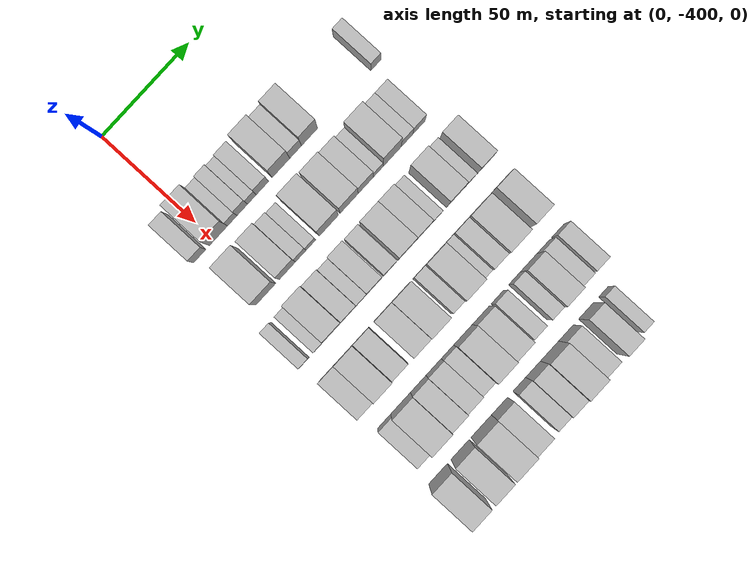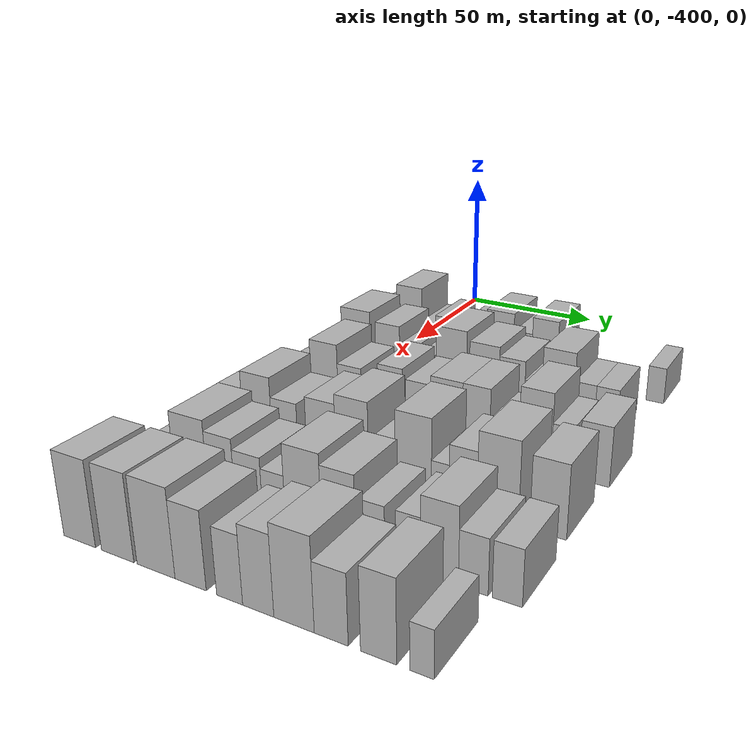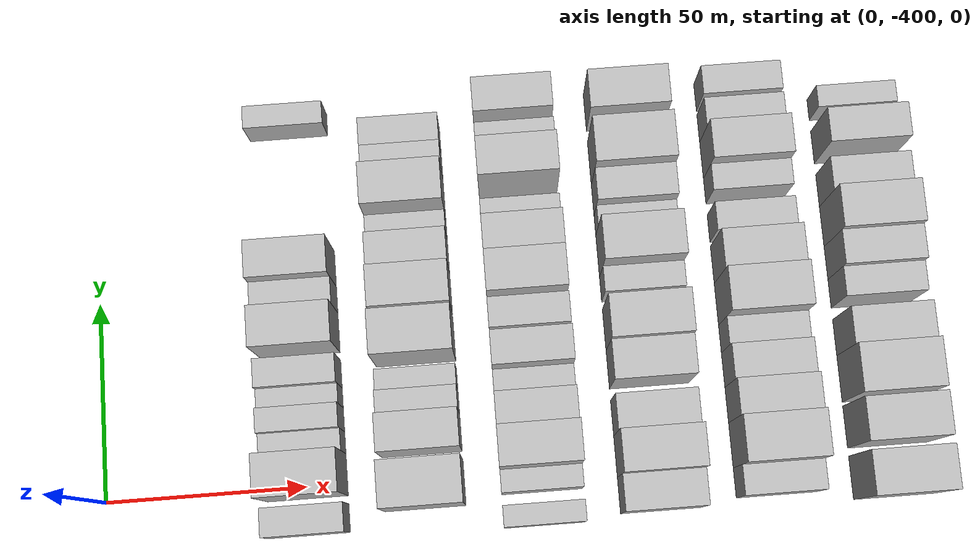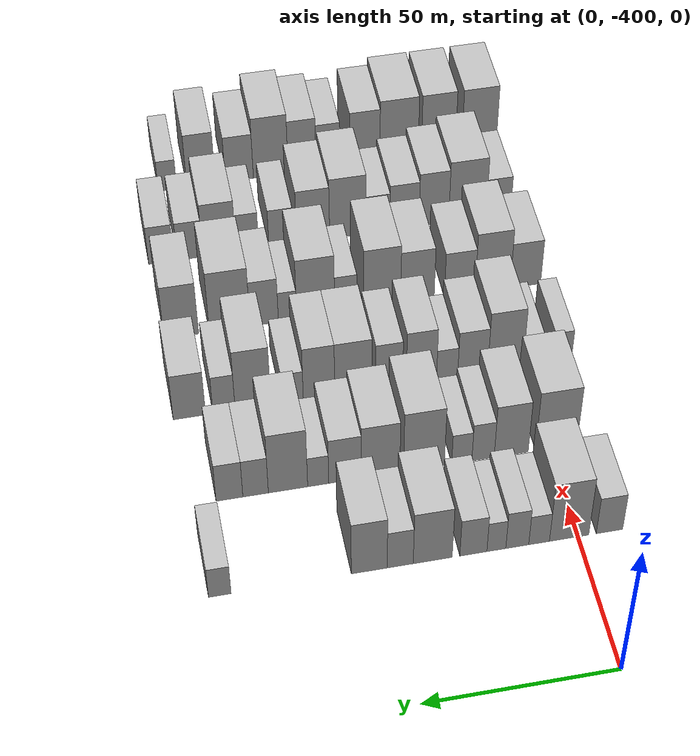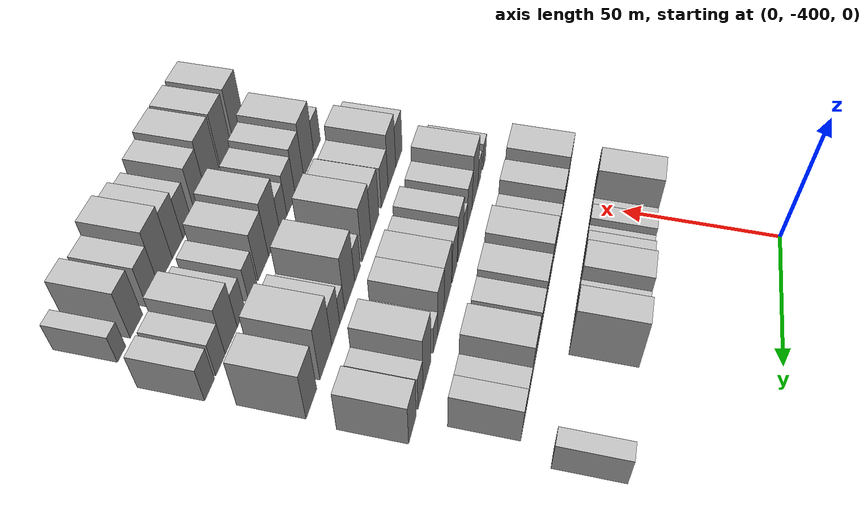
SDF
<sdf version="1.6">
 <world name="default">
  <model name="building_13">
   <static>1</static>
   <pose>50.0000 -408.3630 0 0.000000 0.000000 0.000000</pose>
   <link name="link">
    <pose>0 0 7.50 0 0 0</pose>
    <collision name="collision"><geometry><box><size>20.0000 7.0390 15.0000</size></box></geometry></collision>
    <visual name="visual">
     <cast_shadows>0</cast_shadows>
     <geometry><box><size>20.0000 7.0390 15.0000</size></box></geometry>
     <material>
      <script>
       <uri>model://HANNAS_wall/materials/scripts</uri>
       <uri>model://HANNAS_wall/materials/textures</uri>
       <name>vrc/HANNAS_wall</name>
      </script>
     </material>
    </visual>
   </link>
  </model>
  <model name="building_14">
   <static>1</static>
   <pose>50.0000 -397.6285 0 0.000000 0.000000 0.000000</pose>
   <link name="link">
    <pose>0 0 12.00 0 0 0</pose>
    <collision name="collision"><geometry><box><size>20.0000 10.4300 24.0000</size></box></geometry></collision>
    <visual name="visual">
     <cast_shadows>0</cast_shadows>
     <geometry><box><size>20.0000 10.4300 24.0000</size></box></geometry>
     <material>
      <script>
       <uri>model://HANNAS_wall/materials/scripts</uri>
       <uri>model://HANNAS_wall/materials/textures</uri>
       <name>vrc/HANNAS_wall</name>
      </script>
     </material>
    </visual>
   </link>
  </model>
  <model name="building_15">
   <static>1</static>
   <pose>50.0000 -389.6784 0 0.000000 0.000000 0.000000</pose>
   <link name="link">
    <pose>0 0 6.00 0 0 0</pose>
    <collision name="collision"><geometry><box><size>20.0000 5.4701 12.0000</size></box></geometry></collision>
    <visual name="visual">
     <cast_shadows>0</cast_shadows>
     <geometry><box><size>20.0000 5.4701 12.0000</size></box></geometry>
     <material>
      <script>
       <uri>model://HANNAS_wall/materials/scripts</uri>
       <uri>model://HANNAS_wall/materials/textures</uri>
       <name>vrc/HANNAS_wall</name>
      </script>
     </material>
    </visual>
   </link>
  </model>
  <model name="building_16">
   <static>1</static>
   <pose>50.0000 -383.9326 0 0.000000 0.000000 0.000000</pose>
   <link name="link">
    <pose>0 0 7.50 0 0 0</pose>
    <collision name="collision"><geometry><box><size>20.0000 6.0216 15.0000</size></box></geometry></collision>
    <visual name="visual">
     <cast_shadows>0</cast_shadows>
     <geometry><box><size>20.0000 6.0216 15.0000</size></box></geometry>
     <material>
      <script>
       <uri>model://HANNAS_wall/materials/scripts</uri>
       <uri>model://HANNAS_wall/materials/textures</uri>
       <name>vrc/HANNAS_wall</name>
      </script>
     </material>
    </visual>
   </link>
  </model>
  <model name="building_17">
   <static>1</static>
   <pose>50.0000 -378.4423 0 0.000000 0.000000 0.000000</pose>
   <link name="link">
    <pose>0 0 6.00 0 0 0</pose>
    <collision name="collision"><geometry><box><size>20.0000 4.9590 12.0000</size></box></geometry></collision>
    <visual name="visual">
     <cast_shadows>0</cast_shadows>
     <geometry><box><size>20.0000 4.9590 12.0000</size></box></geometry>
     <material>
      <script>
       <uri>model://HANNAS_wall/materials/scripts</uri>
       <uri>model://HANNAS_wall/materials/textures</uri>
       <name>vrc/HANNAS_wall</name>
      </script>
     </material>
    </visual>
   </link>
  </model>
  <model name="building_18">
   <static>1</static>
   <pose>50.0000 -372.4186 0 0.000000 0.000000 0.000000</pose>
   <link name="link">
    <pose>0 0 7.50 0 0 0</pose>
    <collision name="collision"><geometry><box><size>20.0000 7.0884 15.0000</size></box></geometry></collision>
    <visual name="visual">
     <cast_shadows>0</cast_shadows>
     <geometry><box><size>20.0000 7.0884 15.0000</size></box></geometry>
     <material>
      <script>
       <uri>model://HANNAS_wall/materials/scripts</uri>
       <uri>model://HANNAS_wall/materials/textures</uri>
       <name>vrc/HANNAS_wall</name>
      </script>
     </material>
    </visual>
   </link>
  </model>
  <model name="building_19">
   <static>1</static>
   <pose>50.0000 -361.8042 0 0.000000 0.000000 0.000000</pose>
   <link name="link">
    <pose>0 0 10.50 0 0 0</pose>
    <collision name="collision"><geometry><box><size>20.0000 10.1404 21.0000</size></box></geometry></collision>
    <visual name="visual">
     <cast_shadows>0</cast_shadows>
     <geometry><box><size>20.0000 10.1404 21.0000</size></box></geometry>
     <material>
      <script>
       <uri>model://HANNAS_wall/materials/scripts</uri>
       <uri>model://HANNAS_wall/materials/textures</uri>
       <name>vrc/HANNAS_wall</name>
      </script>
     </material>
    </visual>
   </link>
  </model>
  <model name="building_20">
   <static>1</static>
   <pose>50.0000 -353.3539 0 0.000000 0.000000 0.000000</pose>
   <link name="link">
    <pose>0 0 7.50 0 0 0</pose>
    <collision name="collision"><geometry><box><size>20.0000 6.7602 15.0000</size></box></geometry></collision>
    <visual name="visual">
     <cast_shadows>0</cast_shadows>
     <geometry><box><size>20.0000 6.7602 15.0000</size></box></geometry>
     <material>
      <script>
       <uri>model://HANNAS_wall/materials/scripts</uri>
       <uri>model://HANNAS_wall/materials/textures</uri>
       <name>vrc/HANNAS_wall</name>
      </script>
     </material>
    </visual>
   </link>
  </model>
  <model name="building_21">
   <static>1</static>
   <pose>50.0000 -345.3491 0 0.000000 0.000000 0.000000</pose>
   <link name="link">
    <pose>0 0 10.50 0 0 0</pose>
    <collision name="collision"><geometry><box><size>20.0000 9.2494 21.0000</size></box></geometry></collision>
    <visual name="visual">
     <cast_shadows>0</cast_shadows>
     <geometry><box><size>20.0000 9.2494 21.0000</size></box></geometry>
     <material>
      <script>
       <uri>model://HANNAS_wall/materials/scripts</uri>
       <uri>model://HANNAS_wall/materials/textures</uri>
       <name>vrc/HANNAS_wall</name>
      </script>
     </material>
    </visual>
   </link>
  </model>
  <model name="building_22">
   <static>1</static>
   <pose>50.0000 -307.1220 0 0.000000 0.000000 0.000000</pose>
   <link name="link">
    <pose>0 0 6.00 0 0 0</pose>
    <collision name="collision"><geometry><box><size>20.0000 5.7349 12.0000</size></box></geometry></collision>
    <visual name="visual">
     <cast_shadows>0</cast_shadows>
     <geometry><box><size>20.0000 5.7349 12.0000</size></box></geometry>
     <material>
      <script>
       <uri>model://HANNAS_wall/materials/scripts</uri>
       <uri>model://HANNAS_wall/materials/textures</uri>
       <name>vrc/HANNAS_wall</name>
      </script>
     </material>
    </visual>
   </link>
  </model>
  <model name="building_126">
   <static>1</static>
   <pose>79.0000 -401.8279 0 0.000000 0.000000 0.000000</pose>
   <link name="link">
    <pose>0 0 12.00 0 0 0</pose>
    <collision name="collision"><geometry><box><size>20.0000 11.3581 24.0000</size></box></geometry></collision>
    <visual name="visual">
     <cast_shadows>0</cast_shadows>
     <geometry><box><size>20.0000 11.3581 24.0000</size></box></geometry>
     <material>
      <script>
       <uri>model://HANNAS_wall/materials/scripts</uri>
       <uri>model://HANNAS_wall/materials/textures</uri>
       <name>vrc/HANNAS_wall</name>
      </script>
     </material>
    </visual>
   </link>
  </model>
  <model name="building_127">
   <static>1</static>
   <pose>79.0000 -389.4986 0 0.000000 0.000000 0.000000</pose>
   <link name="link">
    <pose>0 0 10.50 0 0 0</pose>
    <collision name="collision"><geometry><box><size>20.0000 9.3005 21.0000</size></box></geometry></collision>
    <visual name="visual">
     <cast_shadows>0</cast_shadows>
     <geometry><box><size>20.0000 9.3005 21.0000</size></box></geometry>
     <material>
      <script>
       <uri>model://HANNAS_wall/materials/scripts</uri>
       <uri>model://HANNAS_wall/materials/textures</uri>
       <name>vrc/HANNAS_wall</name>
      </script>
     </material>
    </visual>
   </link>
  </model>
  <model name="building_128">
   <static>1</static>
   <pose>79.0000 -381.8173 0 0.000000 0.000000 0.000000</pose>
   <link name="link">
    <pose>0 0 7.50 0 0 0</pose>
    <collision name="collision"><geometry><box><size>20.0000 6.0622 15.0000</size></box></geometry></collision>
    <visual name="visual">
     <cast_shadows>0</cast_shadows>
     <geometry><box><size>20.0000 6.0622 15.0000</size></box></geometry>
     <material>
      <script>
       <uri>model://HANNAS_wall/materials/scripts</uri>
       <uri>model://HANNAS_wall/materials/textures</uri>
       <name>vrc/HANNAS_wall</name>
      </script>
     </material>
    </visual>
   </link>
  </model>
  <model name="building_129">
   <static>1</static>
   <pose>79.0000 -376.0489 0 0.000000 0.000000 0.000000</pose>
   <link name="link">
    <pose>0 0 6.00 0 0 0</pose>
    <collision name="collision"><geometry><box><size>20.0000 5.4746 12.0000</size></box></geometry></collision>
    <visual name="visual">
     <cast_shadows>0</cast_shadows>
     <geometry><box><size>20.0000 5.4746 12.0000</size></box></geometry>
     <material>
      <script>
       <uri>model://HANNAS_wall/materials/scripts</uri>
       <uri>model://HANNAS_wall/materials/textures</uri>
       <name>vrc/HANNAS_wall</name>
      </script>
     </material>
    </visual>
   </link>
  </model>
  <model name="building_130">
   <static>1</static>
   <pose>79.0000 -365.7955 0 0.000000 0.000000 0.000000</pose>
   <link name="link">
    <pose>0 0 12.00 0 0 0</pose>
    <collision name="collision"><geometry><box><size>20.0000 11.0322 24.0000</size></box></geometry></collision>
    <visual name="visual">
     <cast_shadows>0</cast_shadows>
     <geometry><box><size>20.0000 11.0322 24.0000</size></box></geometry>
     <material>
      <script>
       <uri>model://HANNAS_wall/materials/scripts</uri>
       <uri>model://HANNAS_wall/materials/textures</uri>
       <name>vrc/HANNAS_wall</name>
      </script>
     </material>
    </visual>
   </link>
  </model>
  <model name="building_131">
   <static>1</static>
   <pose>79.0000 -354.1145 0 0.000000 0.000000 0.000000</pose>
   <link name="link">
    <pose>0 0 10.50 0 0 0</pose>
    <collision name="collision"><geometry><box><size>20.0000 10.3298 21.0000</size></box></geometry></collision>
    <visual name="visual">
     <cast_shadows>0</cast_shadows>
     <geometry><box><size>20.0000 10.3298 21.0000</size></box></geometry>
     <material>
      <script>
       <uri>model://HANNAS_wall/materials/scripts</uri>
       <uri>model://HANNAS_wall/materials/textures</uri>
       <name>vrc/HANNAS_wall</name>
      </script>
     </material>
    </visual>
   </link>
  </model>
  <model name="building_132">
   <static>1</static>
   <pose>79.0000 -344.5985 0 0.000000 0.000000 0.000000</pose>
   <link name="link">
    <pose>0 0 9.00 0 0 0</pose>
    <collision name="collision"><geometry><box><size>20.0000 8.7021 18.0000</size></box></geometry></collision>
    <visual name="visual">
     <cast_shadows>0</cast_shadows>
     <geometry><box><size>20.0000 8.7021 18.0000</size></box></geometry>
     <material>
      <script>
       <uri>model://HANNAS_wall/materials/scripts</uri>
       <uri>model://HANNAS_wall/materials/textures</uri>
       <name>vrc/HANNAS_wall</name>
      </script>
     </material>
    </visual>
   </link>
  </model>
  <model name="building_133">
   <static>1</static>
   <pose>79.0000 -337.4451 0 0.000000 0.000000 0.000000</pose>
   <link name="link">
    <pose>0 0 6.00 0 0 0</pose>
    <collision name="collision"><geometry><box><size>20.0000 5.6048 12.0000</size></box></geometry></collision>
    <visual name="visual">
     <cast_shadows>0</cast_shadows>
     <geometry><box><size>20.0000 5.6048 12.0000</size></box></geometry>
     <material>
      <script>
       <uri>model://HANNAS_wall/materials/scripts</uri>
       <uri>model://HANNAS_wall/materials/textures</uri>
       <name>vrc/HANNAS_wall</name>
      </script>
     </material>
    </visual>
   </link>
  </model>
  <model name="building_134">
   <static>1</static>
   <pose>79.0000 -329.4252 0 0.000000 0.000000 0.000000</pose>
   <link name="link">
    <pose>0 0 12.00 0 0 0</pose>
    <collision name="collision"><geometry><box><size>20.0000 10.4351 24.0000</size></box></geometry></collision>
    <visual name="visual">
     <cast_shadows>0</cast_shadows>
     <geometry><box><size>20.0000 10.4351 24.0000</size></box></geometry>
     <material>
      <script>
       <uri>model://HANNAS_wall/materials/scripts</uri>
       <uri>model://HANNAS_wall/materials/textures</uri>
       <name>vrc/HANNAS_wall</name>
      </script>
     </material>
    </visual>
   </link>
  </model>
  <model name="building_135">
   <static>1</static>
   <pose>79.0000 -320.8374 0 0.000000 0.000000 0.000000</pose>
   <link name="link">
    <pose>0 0 7.50 0 0 0</pose>
    <collision name="collision"><geometry><box><size>20.0000 6.7405 15.0000</size></box></geometry></collision>
    <visual name="visual">
     <cast_shadows>0</cast_shadows>
     <geometry><box><size>20.0000 6.7405 15.0000</size></box></geometry>
     <material>
      <script>
       <uri>model://HANNAS_wall/materials/scripts</uri>
       <uri>model://HANNAS_wall/materials/textures</uri>
       <name>vrc/HANNAS_wall</name>
      </script>
     </material>
    </visual>
   </link>
  </model>
  <model name="building_136">
   <static>1</static>
   <pose>79.0000 -313.9350 0 0.000000 0.000000 0.000000</pose>
   <link name="link">
    <pose>0 0 7.50 0 0 0</pose>
    <collision name="collision"><geometry><box><size>20.0000 7.0644 15.0000</size></box></geometry></collision>
    <visual name="visual">
     <cast_shadows>0</cast_shadows>
     <geometry><box><size>20.0000 7.0644 15.0000</size></box></geometry>
     <material>
      <script>
       <uri>model://HANNAS_wall/materials/scripts</uri>
       <uri>model://HANNAS_wall/materials/textures</uri>
       <name>vrc/HANNAS_wall</name>
      </script>
     </material>
    </visual>
   </link>
  </model>
  <model name="building_240">
   <static>1</static>
   <pose>108.0000 -411.1909 0 0.000000 0.000000 0.000000</pose>
   <link name="link">
    <pose>0 0 6.00 0 0 0</pose>
    <collision name="collision"><geometry><box><size>20.0000 5.2533 12.0000</size></box></geometry></collision>
    <visual name="visual">
     <cast_shadows>0</cast_shadows>
     <geometry><box><size>20.0000 5.2533 12.0000</size></box></geometry>
     <material>
      <script>
       <uri>model://HANNAS_wall/materials/scripts</uri>
       <uri>model://HANNAS_wall/materials/textures</uri>
       <name>vrc/HANNAS_wall</name>
      </script>
     </material>
    </visual>
   </link>
  </model>
  <model name="building_241">
   <static>1</static>
   <pose>108.0000 -402.7758 0 0.000000 0.000000 0.000000</pose>
   <link name="link">
    <pose>0 0 6.00 0 0 0</pose>
    <collision name="collision"><geometry><box><size>20.0000 5.5769 12.0000</size></box></geometry></collision>
    <visual name="visual">
     <cast_shadows>0</cast_shadows>
     <geometry><box><size>20.0000 5.5769 12.0000</size></box></geometry>
     <material>
      <script>
       <uri>model://HANNAS_wall/materials/scripts</uri>
       <uri>model://HANNAS_wall/materials/textures</uri>
       <name>vrc/HANNAS_wall</name>
      </script>
     </material>
    </visual>
   </link>
  </model>
  <model name="building_242">
   <static>1</static>
   <pose>108.0000 -394.9844 0 0.000000 0.000000 0.000000</pose>
   <link name="link">
    <pose>0 0 12.00 0 0 0</pose>
    <collision name="collision"><geometry><box><size>20.0000 10.0059 24.0000</size></box></geometry></collision>
    <visual name="visual">
     <cast_shadows>0</cast_shadows>
     <geometry><box><size>20.0000 10.0059 24.0000</size></box></geometry>
     <material>
      <script>
       <uri>model://HANNAS_wall/materials/scripts</uri>
       <uri>model://HANNAS_wall/materials/textures</uri>
       <name>vrc/HANNAS_wall</name>
      </script>
     </material>
    </visual>
   </link>
  </model>
  <model name="building_243">
   <static>1</static>
   <pose>108.0000 -385.7614 0 0.000000 0.000000 0.000000</pose>
   <link name="link">
    <pose>0 0 9.00 0 0 0</pose>
    <collision name="collision"><geometry><box><size>20.0000 8.4400 18.0000</size></box></geometry></collision>
    <visual name="visual">
     <cast_shadows>0</cast_shadows>
     <geometry><box><size>20.0000 8.4400 18.0000</size></box></geometry>
     <material>
      <script>
       <uri>model://HANNAS_wall/materials/scripts</uri>
       <uri>model://HANNAS_wall/materials/textures</uri>
       <name>vrc/HANNAS_wall</name>
      </script>
     </material>
    </visual>
   </link>
  </model>
  <model name="building_244">
   <static>1</static>
   <pose>108.0000 -378.5635 0 0.000000 0.000000 0.000000</pose>
   <link name="link">
    <pose>0 0 6.00 0 0 0</pose>
    <collision name="collision"><geometry><box><size>20.0000 5.9558 12.0000</size></box></geometry></collision>
    <visual name="visual">
     <cast_shadows>0</cast_shadows>
     <geometry><box><size>20.0000 5.9558 12.0000</size></box></geometry>
     <material>
      <script>
       <uri>model://HANNAS_wall/materials/scripts</uri>
       <uri>model://HANNAS_wall/materials/textures</uri>
       <name>vrc/HANNAS_wall</name>
      </script>
     </material>
    </visual>
   </link>
  </model>
  <model name="building_245">
   <static>1</static>
   <pose>108.0000 -371.3478 0 0.000000 0.000000 0.000000</pose>
   <link name="link">
    <pose>0 0 10.50 0 0 0</pose>
    <collision name="collision"><geometry><box><size>20.0000 8.4756 21.0000</size></box></geometry></collision>
    <visual name="visual">
     <cast_shadows>0</cast_shadows>
     <geometry><box><size>20.0000 8.4756 21.0000</size></box></geometry>
     <material>
      <script>
       <uri>model://HANNAS_wall/materials/scripts</uri>
       <uri>model://HANNAS_wall/materials/textures</uri>
       <name>vrc/HANNAS_wall</name>
      </script>
     </material>
    </visual>
   </link>
  </model>
  <model name="building_246">
   <static>1</static>
   <pose>108.0000 -362.3578 0 0.000000 0.000000 0.000000</pose>
   <link name="link">
    <pose>0 0 9.00 0 0 0</pose>
    <collision name="collision"><geometry><box><size>20.0000 7.5045 18.0000</size></box></geometry></collision>
    <visual name="visual">
     <cast_shadows>0</cast_shadows>
     <geometry><box><size>20.0000 7.5045 18.0000</size></box></geometry>
     <material>
      <script>
       <uri>model://HANNAS_wall/materials/scripts</uri>
       <uri>model://HANNAS_wall/materials/textures</uri>
       <name>vrc/HANNAS_wall</name>
      </script>
     </material>
    </visual>
   </link>
  </model>
  <model name="building_247">
   <static>1</static>
   <pose>108.0000 -352.4437 0 0.000000 0.000000 0.000000</pose>
   <link name="link">
    <pose>0 0 10.50 0 0 0</pose>
    <collision name="collision"><geometry><box><size>20.0000 10.3237 21.0000</size></box></geometry></collision>
    <visual name="visual">
     <cast_shadows>0</cast_shadows>
     <geometry><box><size>20.0000 10.3237 21.0000</size></box></geometry>
     <material>
      <script>
       <uri>model://HANNAS_wall/materials/scripts</uri>
       <uri>model://HANNAS_wall/materials/textures</uri>
       <name>vrc/HANNAS_wall</name>
      </script>
     </material>
    </visual>
   </link>
  </model>
  <model name="building_248">
   <static>1</static>
   <pose>108.0000 -342.9210 0 0.000000 0.000000 0.000000</pose>
   <link name="link">
    <pose>0 0 10.50 0 0 0</pose>
    <collision name="collision"><geometry><box><size>20.0000 8.7217 21.0000</size></box></geometry></collision>
    <visual name="visual">
     <cast_shadows>0</cast_shadows>
     <geometry><box><size>20.0000 8.7217 21.0000</size></box></geometry>
     <material>
      <script>
       <uri>model://HANNAS_wall/materials/scripts</uri>
       <uri>model://HANNAS_wall/materials/textures</uri>
       <name>vrc/HANNAS_wall</name>
      </script>
     </material>
    </visual>
   </link>
  </model>
  <model name="building_249">
   <static>1</static>
   <pose>108.0000 -335.6010 0 0.000000 0.000000 0.000000</pose>
   <link name="link">
    <pose>0 0 6.00 0 0 0</pose>
    <collision name="collision"><geometry><box><size>20.0000 5.9183 12.0000</size></box></geometry></collision>
    <visual name="visual">
     <cast_shadows>0</cast_shadows>
     <geometry><box><size>20.0000 5.9183 12.0000</size></box></geometry>
     <material>
      <script>
       <uri>model://HANNAS_wall/materials/scripts</uri>
       <uri>model://HANNAS_wall/materials/textures</uri>
       <name>vrc/HANNAS_wall</name>
      </script>
     </material>
    </visual>
   </link>
  </model>
  <model name="building_250">
   <static>1</static>
   <pose>108.0000 -324.7486 0 0.000000 0.000000 0.000000</pose>
   <link name="link">
    <pose>0 0 12.00 0 0 0</pose>
    <collision name="collision"><geometry><box><size>20.0000 9.7865 24.0000</size></box></geometry></collision>
    <visual name="visual">
     <cast_shadows>0</cast_shadows>
     <geometry><box><size>20.0000 9.7865 24.0000</size></box></geometry>
     <material>
      <script>
       <uri>model://HANNAS_wall/materials/scripts</uri>
       <uri>model://HANNAS_wall/materials/textures</uri>
       <name>vrc/HANNAS_wall</name>
      </script>
     </material>
    </visual>
   </link>
  </model>
  <model name="building_251">
   <static>1</static>
   <pose>108.0000 -316.8210 0 0.000000 0.000000 0.000000</pose>
   <link name="link">
    <pose>0 0 7.50 0 0 0</pose>
    <collision name="collision"><geometry><box><size>20.0000 6.0687 15.0000</size></box></geometry></collision>
    <visual name="visual">
     <cast_shadows>0</cast_shadows>
     <geometry><box><size>20.0000 6.0687 15.0000</size></box></geometry>
     <material>
      <script>
       <uri>model://HANNAS_wall/materials/scripts</uri>
       <uri>model://HANNAS_wall/materials/textures</uri>
       <name>vrc/HANNAS_wall</name>
      </script>
     </material>
    </visual>
   </link>
  </model>
  <model name="building_252">
   <static>1</static>
   <pose>108.0000 -307.3789 0 0.000000 0.000000 0.000000</pose>
   <link name="link">
    <pose>0 0 9.00 0 0 0</pose>
    <collision name="collision"><geometry><box><size>20.0000 8.8155 18.0000</size></box></geometry></collision>
    <visual name="visual">
     <cast_shadows>0</cast_shadows>
     <geometry><box><size>20.0000 8.8155 18.0000</size></box></geometry>
     <material>
      <script>
       <uri>model://HANNAS_wall/materials/scripts</uri>
       <uri>model://HANNAS_wall/materials/textures</uri>
       <name>vrc/HANNAS_wall</name>
      </script>
     </material>
    </visual>
   </link>
  </model>
  <model name="building_350">
   <static>1</static>
   <pose>137.0000 -407.9793 0 0.000000 0.000000 0.000000</pose>
   <link name="link">
    <pose>0 0 9.00 0 0 0</pose>
    <collision name="collision"><geometry><box><size>20.0000 8.9638 18.0000</size></box></geometry></collision>
    <visual name="visual">
     <cast_shadows>0</cast_shadows>
     <geometry><box><size>20.0000 8.9638 18.0000</size></box></geometry>
     <material>
      <script>
       <uri>model://HANNAS_wall/materials/scripts</uri>
       <uri>model://HANNAS_wall/materials/textures</uri>
       <name>vrc/HANNAS_wall</name>
      </script>
     </material>
    </visual>
   </link>
  </model>
  <model name="building_351">
   <static>1</static>
   <pose>137.0000 -398.3621 0 0.000000 0.000000 0.000000</pose>
   <link name="link">
    <pose>0 0 12.00 0 0 0</pose>
    <collision name="collision"><geometry><box><size>20.0000 10.2706 24.0000</size></box></geometry></collision>
    <visual name="visual">
     <cast_shadows>0</cast_shadows>
     <geometry><box><size>20.0000 10.2706 24.0000</size></box></geometry>
     <material>
      <script>
       <uri>model://HANNAS_wall/materials/scripts</uri>
       <uri>model://HANNAS_wall/materials/textures</uri>
       <name>vrc/HANNAS_wall</name>
      </script>
     </material>
    </visual>
   </link>
  </model>
  <model name="building_352">
   <static>1</static>
   <pose>137.0000 -388.7688 0 0.000000 0.000000 0.000000</pose>
   <link name="link">
    <pose>0 0 9.00 0 0 0</pose>
    <collision name="collision"><geometry><box><size>20.0000 8.9160 18.0000</size></box></geometry></collision>
    <visual name="visual">
     <cast_shadows>0</cast_shadows>
     <geometry><box><size>20.0000 8.9160 18.0000</size></box></geometry>
     <material>
      <script>
       <uri>model://HANNAS_wall/materials/scripts</uri>
       <uri>model://HANNAS_wall/materials/textures</uri>
       <name>vrc/HANNAS_wall</name>
      </script>
     </material>
    </visual>
   </link>
  </model>
  <model name="building_353">
   <static>1</static>
   <pose>137.0000 -376.4501 0 0.000000 0.000000 0.000000</pose>
   <link name="link">
    <pose>0 0 10.50 0 0 0</pose>
    <collision name="collision"><geometry><box><size>20.0000 9.7214 21.0000</size></box></geometry></collision>
    <visual name="visual">
     <cast_shadows>0</cast_shadows>
     <geometry><box><size>20.0000 9.7214 21.0000</size></box></geometry>
     <material>
      <script>
       <uri>model://HANNAS_wall/materials/scripts</uri>
       <uri>model://HANNAS_wall/materials/textures</uri>
       <name>vrc/HANNAS_wall</name>
      </script>
     </material>
    </visual>
   </link>
  </model>
  <model name="building_354">
   <static>1</static>
   <pose>137.0000 -366.2980 0 0.000000 0.000000 0.000000</pose>
   <link name="link">
    <pose>0 0 12.00 0 0 0</pose>
    <collision name="collision"><geometry><box><size>20.0000 10.5828 24.0000</size></box></geometry></collision>
    <visual name="visual">
     <cast_shadows>0</cast_shadows>
     <geometry><box><size>20.0000 10.5828 24.0000</size></box></geometry>
     <material>
      <script>
       <uri>model://HANNAS_wall/materials/scripts</uri>
       <uri>model://HANNAS_wall/materials/textures</uri>
       <name>vrc/HANNAS_wall</name>
      </script>
     </material>
    </visual>
   </link>
  </model>
  <model name="building_355">
   <static>1</static>
   <pose>137.0000 -355.8295 0 0.000000 0.000000 0.000000</pose>
   <link name="link">
    <pose>0 0 7.50 0 0 0</pose>
    <collision name="collision"><geometry><box><size>20.0000 6.3542 15.0000</size></box></geometry></collision>
    <visual name="visual">
     <cast_shadows>0</cast_shadows>
     <geometry><box><size>20.0000 6.3542 15.0000</size></box></geometry>
     <material>
      <script>
       <uri>model://HANNAS_wall/materials/scripts</uri>
       <uri>model://HANNAS_wall/materials/textures</uri>
       <name>vrc/HANNAS_wall</name>
      </script>
     </material>
    </visual>
   </link>
  </model>
  <model name="building_356">
   <static>1</static>
   <pose>137.0000 -347.2038 0 0.000000 0.000000 0.000000</pose>
   <link name="link">
    <pose>0 0 12.00 0 0 0</pose>
    <collision name="collision"><geometry><box><size>20.0000 10.8970 24.0000</size></box></geometry></collision>
    <visual name="visual">
     <cast_shadows>0</cast_shadows>
     <geometry><box><size>20.0000 10.8970 24.0000</size></box></geometry>
     <material>
      <script>
       <uri>model://HANNAS_wall/materials/scripts</uri>
       <uri>model://HANNAS_wall/materials/textures</uri>
       <name>vrc/HANNAS_wall</name>
      </script>
     </material>
    </visual>
   </link>
  </model>
  <model name="building_357">
   <static>1</static>
   <pose>137.0000 -339.1524 0 0.000000 0.000000 0.000000</pose>
   <link name="link">
    <pose>0 0 6.00 0 0 0</pose>
    <collision name="collision"><geometry><box><size>20.0000 5.2058 12.0000</size></box></geometry></collision>
    <visual name="visual">
     <cast_shadows>0</cast_shadows>
     <geometry><box><size>20.0000 5.2058 12.0000</size></box></geometry>
     <material>
      <script>
       <uri>model://HANNAS_wall/materials/scripts</uri>
       <uri>model://HANNAS_wall/materials/textures</uri>
       <name>vrc/HANNAS_wall</name>
      </script>
     </material>
    </visual>
   </link>
  </model>
  <model name="building_358">
   <static>1</static>
   <pose>137.0000 -332.5166 0 0.000000 0.000000 0.000000</pose>
   <link name="link">
    <pose>0 0 9.00 0 0 0</pose>
    <collision name="collision"><geometry><box><size>20.0000 8.0657 18.0000</size></box></geometry></collision>
    <visual name="visual">
     <cast_shadows>0</cast_shadows>
     <geometry><box><size>20.0000 8.0657 18.0000</size></box></geometry>
     <material>
      <script>
       <uri>model://HANNAS_wall/materials/scripts</uri>
       <uri>model://HANNAS_wall/materials/textures</uri>
       <name>vrc/HANNAS_wall</name>
      </script>
     </material>
    </visual>
   </link>
  </model>
  <model name="building_359">
   <static>1</static>
   <pose>137.0000 -322.7128 0 0.000000 0.000000 0.000000</pose>
   <link name="link">
    <pose>0 0 12.00 0 0 0</pose>
    <collision name="collision"><geometry><box><size>20.0000 11.5420 24.0000</size></box></geometry></collision>
    <visual name="visual">
     <cast_shadows>0</cast_shadows>
     <geometry><box><size>20.0000 11.5420 24.0000</size></box></geometry>
     <material>
      <script>
       <uri>model://HANNAS_wall/materials/scripts</uri>
       <uri>model://HANNAS_wall/materials/textures</uri>
       <name>vrc/HANNAS_wall</name>
      </script>
     </material>
    </visual>
   </link>
  </model>
  <model name="building_360">
   <static>1</static>
   <pose>137.0000 -309.0720 0 0.000000 0.000000 0.000000</pose>
   <link name="link">
    <pose>0 0 10.50 0 0 0</pose>
    <collision name="collision"><geometry><box><size>20.0000 9.7395 21.0000</size></box></geometry></collision>
    <visual name="visual">
     <cast_shadows>0</cast_shadows>
     <geometry><box><size>20.0000 9.7395 21.0000</size></box></geometry>
     <material>
      <script>
       <uri>model://HANNAS_wall/materials/scripts</uri>
       <uri>model://HANNAS_wall/materials/textures</uri>
       <name>vrc/HANNAS_wall</name>
      </script>
     </material>
    </visual>
   </link>
  </model>
  <model name="building_465">
   <static>1</static>
   <pose>166.0000 -407.0946 0 0.000000 0.000000 0.000000</pose>
   <link name="link">
    <pose>0 0 7.50 0 0 0</pose>
    <collision name="collision"><geometry><box><size>20.0000 7.4270 15.0000</size></box></geometry></collision>
    <visual name="visual">
     <cast_shadows>0</cast_shadows>
     <geometry><box><size>20.0000 7.4270 15.0000</size></box></geometry>
     <material>
      <script>
       <uri>model://HANNAS_wall/materials/scripts</uri>
       <uri>model://HANNAS_wall/materials/textures</uri>
       <name>vrc/HANNAS_wall</name>
      </script>
     </material>
    </visual>
   </link>
  </model>
  <model name="building_466">
   <static>1</static>
   <pose>166.0000 -397.7326 0 0.000000 0.000000 0.000000</pose>
   <link name="link">
    <pose>0 0 12.00 0 0 0</pose>
    <collision name="collision"><geometry><box><size>20.0000 11.2969 24.0000</size></box></geometry></collision>
    <visual name="visual">
     <cast_shadows>0</cast_shadows>
     <geometry><box><size>20.0000 11.2969 24.0000</size></box></geometry>
     <material>
      <script>
       <uri>model://HANNAS_wall/materials/scripts</uri>
       <uri>model://HANNAS_wall/materials/textures</uri>
       <name>vrc/HANNAS_wall</name>
      </script>
     </material>
    </visual>
   </link>
  </model>
  <model name="building_467">
   <static>1</static>
   <pose>166.0000 -387.6231 0 0.000000 0.000000 0.000000</pose>
   <link name="link">
    <pose>0 0 10.50 0 0 0</pose>
    <collision name="collision"><geometry><box><size>20.0000 8.9222 21.0000</size></box></geometry></collision>
    <visual name="visual">
     <cast_shadows>0</cast_shadows>
     <geometry><box><size>20.0000 8.9222 21.0000</size></box></geometry>
     <material>
      <script>
       <uri>model://HANNAS_wall/materials/scripts</uri>
       <uri>model://HANNAS_wall/materials/textures</uri>
       <name>vrc/HANNAS_wall</name>
      </script>
     </material>
    </visual>
   </link>
  </model>
  <model name="building_468">
   <static>1</static>
   <pose>166.0000 -378.7931 0 0.000000 0.000000 0.000000</pose>
   <link name="link">
    <pose>0 0 9.00 0 0 0</pose>
    <collision name="collision"><geometry><box><size>20.0000 8.7379 18.0000</size></box></geometry></collision>
    <visual name="visual">
     <cast_shadows>0</cast_shadows>
     <geometry><box><size>20.0000 8.7379 18.0000</size></box></geometry>
     <material>
      <script>
       <uri>model://HANNAS_wall/materials/scripts</uri>
       <uri>model://HANNAS_wall/materials/textures</uri>
       <name>vrc/HANNAS_wall</name>
      </script>
     </material>
    </visual>
   </link>
  </model>
  <model name="building_469">
   <static>1</static>
   <pose>166.0000 -370.8876 0 0.000000 0.000000 0.000000</pose>
   <link name="link">
    <pose>0 0 7.50 0 0 0</pose>
    <collision name="collision"><geometry><box><size>20.0000 7.0731 15.0000</size></box></geometry></collision>
    <visual name="visual">
     <cast_shadows>0</cast_shadows>
     <geometry><box><size>20.0000 7.0731 15.0000</size></box></geometry>
     <material>
      <script>
       <uri>model://HANNAS_wall/materials/scripts</uri>
       <uri>model://HANNAS_wall/materials/textures</uri>
       <name>vrc/HANNAS_wall</name>
      </script>
     </material>
    </visual>
   </link>
  </model>
  <model name="building_470">
   <static>1</static>
   <pose>166.0000 -361.9416 0 0.000000 0.000000 0.000000</pose>
   <link name="link">
    <pose>0 0 12.00 0 0 0</pose>
    <collision name="collision"><geometry><box><size>20.0000 10.8190 24.0000</size></box></geometry></collision>
    <visual name="visual">
     <cast_shadows>0</cast_shadows>
     <geometry><box><size>20.0000 10.8190 24.0000</size></box></geometry>
     <material>
      <script>
       <uri>model://HANNAS_wall/materials/scripts</uri>
       <uri>model://HANNAS_wall/materials/textures</uri>
       <name>vrc/HANNAS_wall</name>
      </script>
     </material>
    </visual>
   </link>
  </model>
  <model name="building_471">
   <static>1</static>
   <pose>166.0000 -351.6394 0 0.000000 0.000000 0.000000</pose>
   <link name="link">
    <pose>0 0 10.50 0 0 0</pose>
    <collision name="collision"><geometry><box><size>20.0000 9.7853 21.0000</size></box></geometry></collision>
    <visual name="visual">
     <cast_shadows>0</cast_shadows>
     <geometry><box><size>20.0000 9.7853 21.0000</size></box></geometry>
     <material>
      <script>
       <uri>model://HANNAS_wall/materials/scripts</uri>
       <uri>model://HANNAS_wall/materials/textures</uri>
       <name>vrc/HANNAS_wall</name>
      </script>
     </material>
    </visual>
   </link>
  </model>
  <model name="building_472">
   <static>1</static>
   <pose>166.0000 -342.1630 0 0.000000 0.000000 0.000000</pose>
   <link name="link">
    <pose>0 0 7.50 0 0 0</pose>
    <collision name="collision"><geometry><box><size>20.0000 7.1676 15.0000</size></box></geometry></collision>
    <visual name="visual">
     <cast_shadows>0</cast_shadows>
     <geometry><box><size>20.0000 7.1676 15.0000</size></box></geometry>
     <material>
      <script>
       <uri>model://HANNAS_wall/materials/scripts</uri>
       <uri>model://HANNAS_wall/materials/textures</uri>
       <name>vrc/HANNAS_wall</name>
      </script>
     </material>
    </visual>
   </link>
  </model>
  <model name="building_473">
   <static>1</static>
   <pose>166.0000 -332.2569 0 0.000000 0.000000 0.000000</pose>
   <link name="link">
    <pose>0 0 7.50 0 0 0</pose>
    <collision name="collision"><geometry><box><size>20.0000 6.6446 15.0000</size></box></geometry></collision>
    <visual name="visual">
     <cast_shadows>0</cast_shadows>
     <geometry><box><size>20.0000 6.6446 15.0000</size></box></geometry>
     <material>
      <script>
       <uri>model://HANNAS_wall/materials/scripts</uri>
       <uri>model://HANNAS_wall/materials/textures</uri>
       <name>vrc/HANNAS_wall</name>
      </script>
     </material>
    </visual>
   </link>
  </model>
  <model name="building_474">
   <static>1</static>
   <pose>166.0000 -324.0570 0 0.000000 0.000000 0.000000</pose>
   <link name="link">
    <pose>0 0 10.50 0 0 0</pose>
    <collision name="collision"><geometry><box><size>20.0000 9.7551 21.0000</size></box></geometry></collision>
    <visual name="visual">
     <cast_shadows>0</cast_shadows>
     <geometry><box><size>20.0000 9.7551 21.0000</size></box></geometry>
     <material>
      <script>
       <uri>model://HANNAS_wall/materials/scripts</uri>
       <uri>model://HANNAS_wall/materials/textures</uri>
       <name>vrc/HANNAS_wall</name>
      </script>
     </material>
    </visual>
   </link>
  </model>
  <model name="building_475">
   <static>1</static>
   <pose>166.0000 -315.4754 0 0.000000 0.000000 0.000000</pose>
   <link name="link">
    <pose>0 0 7.50 0 0 0</pose>
    <collision name="collision"><geometry><box><size>20.0000 7.4081 15.0000</size></box></geometry></collision>
    <visual name="visual">
     <cast_shadows>0</cast_shadows>
     <geometry><box><size>20.0000 7.4081 15.0000</size></box></geometry>
     <material>
      <script>
       <uri>model://HANNAS_wall/materials/scripts</uri>
       <uri>model://HANNAS_wall/materials/textures</uri>
       <name>vrc/HANNAS_wall</name>
      </script>
     </material>
    </visual>
   </link>
  </model>
  <model name="building_476">
   <static>1</static>
   <pose>166.0000 -307.1188 0 0.000000 0.000000 0.000000</pose>
   <link name="link">
    <pose>0 0 7.50 0 0 0</pose>
    <collision name="collision"><geometry><box><size>20.0000 7.3052 15.0000</size></box></geometry></collision>
    <visual name="visual">
     <cast_shadows>0</cast_shadows>
     <geometry><box><size>20.0000 7.3052 15.0000</size></box></geometry>
     <material>
      <script>
       <uri>model://HANNAS_wall/materials/scripts</uri>
       <uri>model://HANNAS_wall/materials/textures</uri>
       <name>vrc/HANNAS_wall</name>
      </script>
     </material>
    </visual>
   </link>
  </model>
  <model name="building_577">
   <static>1</static>
   <pose>195.0000 -408.0457 0 0.000000 0.000000 0.000000</pose>
   <link name="link">
    <pose>0 0 12.00 0 0 0</pose>
    <collision name="collision"><geometry><box><size>20.0000 10.7646 24.0000</size></box></geometry></collision>
    <visual name="visual">
     <cast_shadows>0</cast_shadows>
     <geometry><box><size>20.0000 10.7646 24.0000</size></box></geometry>
     <material>
      <script>
       <uri>model://HANNAS_wall/materials/scripts</uri>
       <uri>model://HANNAS_wall/materials/textures</uri>
       <name>vrc/HANNAS_wall</name>
      </script>
     </material>
    </visual>
   </link>
  </model>
  <model name="building_578">
   <static>1</static>
   <pose>195.0000 -395.3873 0 0.000000 0.000000 0.000000</pose>
   <link name="link">
    <pose>0 0 12.00 0 0 0</pose>
    <collision name="collision"><geometry><box><size>20.0000 10.5521 24.0000</size></box></geometry></collision>
    <visual name="visual">
     <cast_shadows>0</cast_shadows>
     <geometry><box><size>20.0000 10.5521 24.0000</size></box></geometry>
     <material>
      <script>
       <uri>model://HANNAS_wall/materials/scripts</uri>
       <uri>model://HANNAS_wall/materials/textures</uri>
       <name>vrc/HANNAS_wall</name>
      </script>
     </material>
    </visual>
   </link>
  </model>
  <model name="building_579">
   <static>1</static>
   <pose>195.0000 -383.2135 0 0.000000 0.000000 0.000000</pose>
   <link name="link">
    <pose>0 0 12.00 0 0 0</pose>
    <collision name="collision"><geometry><box><size>20.0000 11.7954 24.0000</size></box></geometry></collision>
    <visual name="visual">
     <cast_shadows>0</cast_shadows>
     <geometry><box><size>20.0000 11.7954 24.0000</size></box></geometry>
     <material>
      <script>
       <uri>model://HANNAS_wall/materials/scripts</uri>
       <uri>model://HANNAS_wall/materials/textures</uri>
       <name>vrc/HANNAS_wall</name>
      </script>
     </material>
    </visual>
   </link>
  </model>
  <model name="building_580">
   <static>1</static>
   <pose>195.0000 -372.6923 0 0.000000 0.000000 0.000000</pose>
   <link name="link">
    <pose>0 0 10.50 0 0 0</pose>
    <collision name="collision"><geometry><box><size>20.0000 9.2471 21.0000</size></box></geometry></collision>
    <visual name="visual">
     <cast_shadows>0</cast_shadows>
     <geometry><box><size>20.0000 9.2471 21.0000</size></box></geometry>
     <material>
      <script>
       <uri>model://HANNAS_wall/materials/scripts</uri>
       <uri>model://HANNAS_wall/materials/textures</uri>
       <name>vrc/HANNAS_wall</name>
      </script>
     </material>
    </visual>
   </link>
  </model>
  <model name="building_581">
   <static>1</static>
   <pose>195.0000 -361.3921 0 0.000000 0.000000 0.000000</pose>
   <link name="link">
    <pose>0 0 9.00 0 0 0</pose>
    <collision name="collision"><geometry><box><size>20.0000 7.3532 18.0000</size></box></geometry></collision>
    <visual name="visual">
     <cast_shadows>0</cast_shadows>
     <geometry><box><size>20.0000 7.3532 18.0000</size></box></geometry>
     <material>
      <script>
       <uri>model://HANNAS_wall/materials/scripts</uri>
       <uri>model://HANNAS_wall/materials/textures</uri>
       <name>vrc/HANNAS_wall</name>
      </script>
     </material>
    </visual>
   </link>
  </model>
  <model name="building_582">
   <static>1</static>
   <pose>195.0000 -353.4499 0 0.000000 0.000000 0.000000</pose>
   <link name="link">
    <pose>0 0 10.50 0 0 0</pose>
    <collision name="collision"><geometry><box><size>20.0000 8.5313 21.0000</size></box></geometry></collision>
    <visual name="visual">
     <cast_shadows>0</cast_shadows>
     <geometry><box><size>20.0000 8.5313 21.0000</size></box></geometry>
     <material>
      <script>
       <uri>model://HANNAS_wall/materials/scripts</uri>
       <uri>model://HANNAS_wall/materials/textures</uri>
       <name>vrc/HANNAS_wall</name>
      </script>
     </material>
    </visual>
   </link>
  </model>
  <model name="building_583">
   <static>1</static>
   <pose>195.0000 -343.8959 0 0.000000 0.000000 0.000000</pose>
   <link name="link">
    <pose>0 0 12.00 0 0 0</pose>
    <collision name="collision"><geometry><box><size>20.0000 10.5766 24.0000</size></box></geometry></collision>
    <visual name="visual">
     <cast_shadows>0</cast_shadows>
     <geometry><box><size>20.0000 10.5766 24.0000</size></box></geometry>
     <material>
      <script>
       <uri>model://HANNAS_wall/materials/scripts</uri>
       <uri>model://HANNAS_wall/materials/textures</uri>
       <name>vrc/HANNAS_wall</name>
      </script>
     </material>
    </visual>
   </link>
  </model>
  <model name="building_584">
   <static>1</static>
   <pose>195.0000 -334.3548 0 0.000000 0.000000 0.000000</pose>
   <link name="link">
    <pose>0 0 9.00 0 0 0</pose>
    <collision name="collision"><geometry><box><size>20.0000 8.5057 18.0000</size></box></geometry></collision>
    <visual name="visual">
     <cast_shadows>0</cast_shadows>
     <geometry><box><size>20.0000 8.5057 18.0000</size></box></geometry>
     <material>
      <script>
       <uri>model://HANNAS_wall/materials/scripts</uri>
       <uri>model://HANNAS_wall/materials/textures</uri>
       <name>vrc/HANNAS_wall</name>
      </script>
     </material>
    </visual>
   </link>
  </model>
  <model name="building_585">
   <static>1</static>
   <pose>195.0000 -322.7908 0 0.000000 0.000000 0.000000</pose>
   <link name="link">
    <pose>0 0 10.50 0 0 0</pose>
    <collision name="collision"><geometry><box><size>20.0000 8.6223 21.0000</size></box></geometry></collision>
    <visual name="visual">
     <cast_shadows>0</cast_shadows>
     <geometry><box><size>20.0000 8.6223 21.0000</size></box></geometry>
     <material>
      <script>
       <uri>model://HANNAS_wall/materials/scripts</uri>
       <uri>model://HANNAS_wall/materials/textures</uri>
       <name>vrc/HANNAS_wall</name>
      </script>
     </material>
    </visual>
   </link>
  </model>
  <model name="building_586">
   <static>1</static>
   <pose>195.0000 -312.7009 0 0.000000 0.000000 0.000000</pose>
   <link name="link">
    <pose>0 0 6.00 0 0 0</pose>
    <collision name="collision"><geometry><box><size>20.0000 5.5574 12.0000</size></box></geometry></collision>
    <visual name="visual">
     <cast_shadows>0</cast_shadows>
     <geometry><box><size>20.0000 5.5574 12.0000</size></box></geometry>
     <material>
      <script>
       <uri>model://HANNAS_wall/materials/scripts</uri>
       <uri>model://HANNAS_wall/materials/textures</uri>
       <name>vrc/HANNAS_wall</name>
      </script>
     </material>
    </visual>
   </link>
  </model>
 </world>
</sdf>
